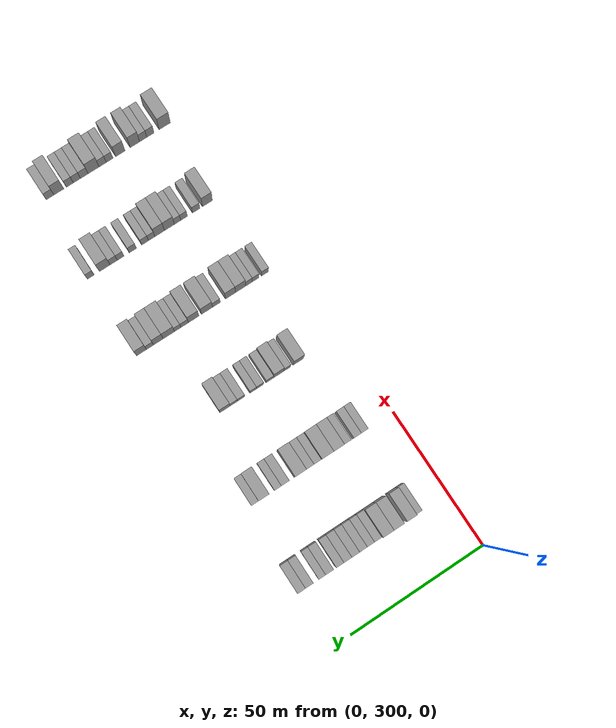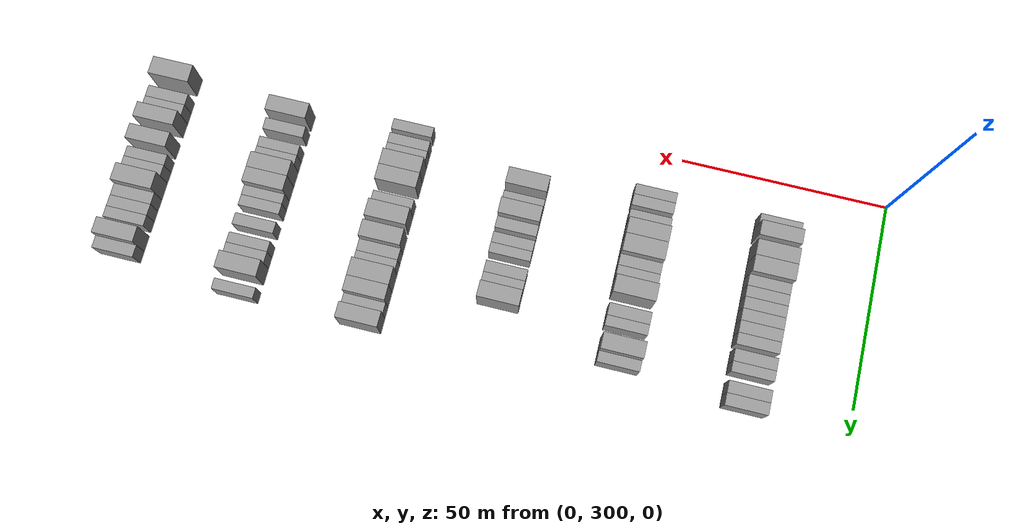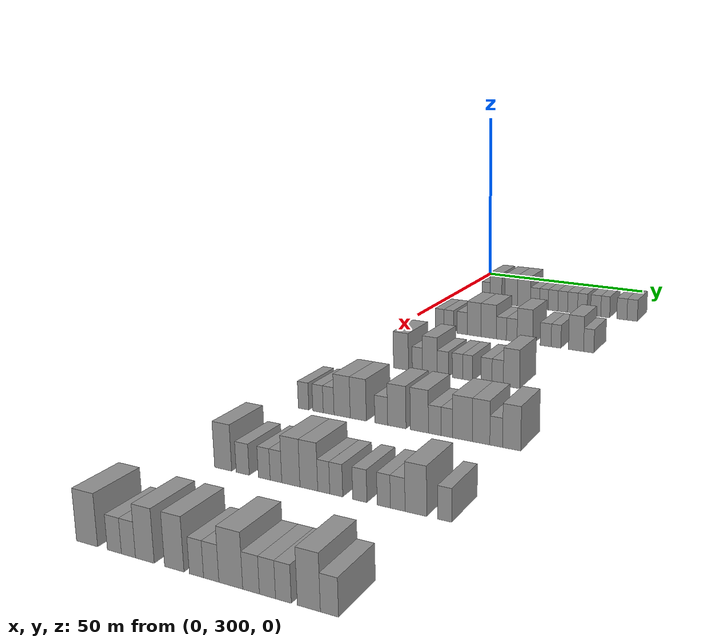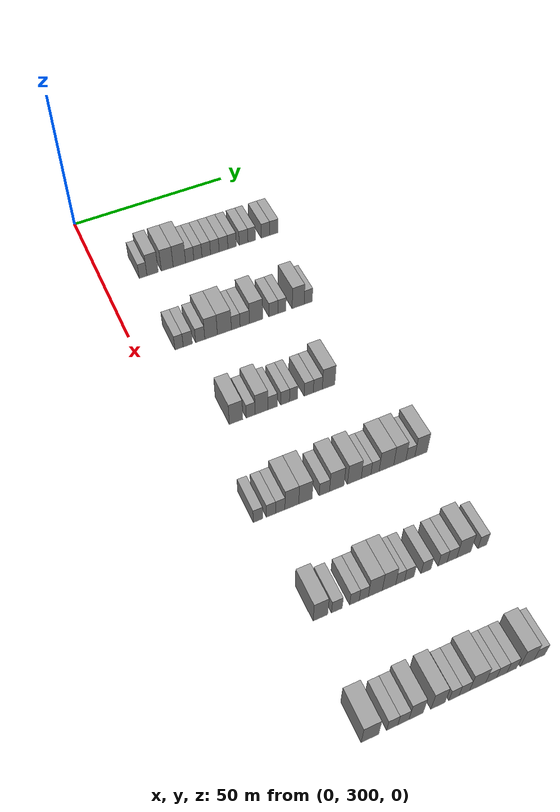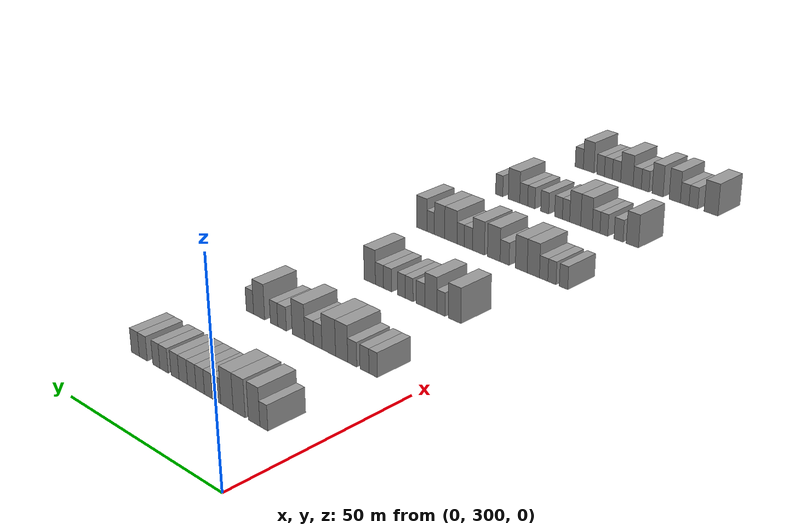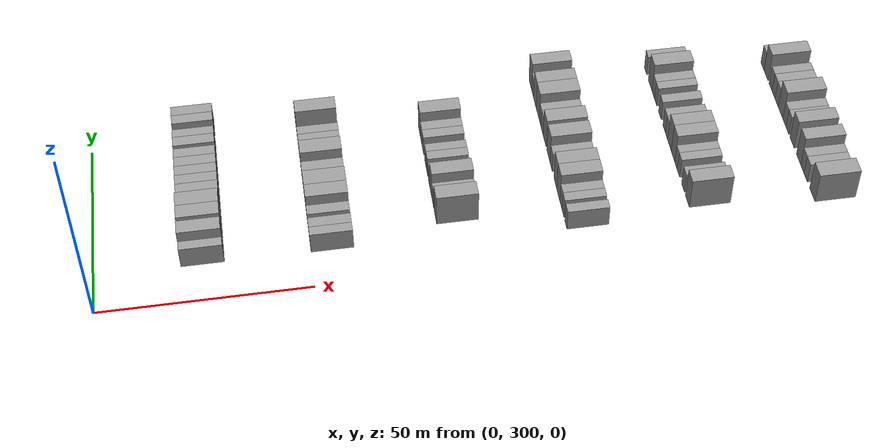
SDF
<sdf version="1.6">
 <world name="default">
  <model name="building_179">
   <static>1</static>
   <pose>25.0000 311.8172 0 0.000000 0.000000 0.000000</pose>
   <link name="link">
    <pose>0 0 3.00 0 0 0</pose>
    <collision name="collision"><geometry><box><size>10.0000 2.4800 6.0000</size></box></geometry></collision>
    <visual name="visual">
     <cast_shadows>0</cast_shadows>
     <geometry><box><size>10.0000 2.4800 6.0000</size></box></geometry>
     <material>
      <script>
       <uri>model://grey_wall/materials/scripts</uri>
       <uri>model://grey_wall/materials/textures</uri>
       <name>vrc/grey_wall</name>
      </script>
     </material>
    </visual>
   </link>
  </model>
  <model name="building_180">
   <static>1</static>
   <pose>25.0000 314.8804 0 0.000000 0.000000 0.000000</pose>
   <link name="link">
    <pose>0 0 4.50 0 0 0</pose>
    <collision name="collision"><geometry><box><size>10.0000 3.6463 9.0000</size></box></geometry></collision>
    <visual name="visual">
     <cast_shadows>0</cast_shadows>
     <geometry><box><size>10.0000 3.6463 9.0000</size></box></geometry>
     <material>
      <script>
       <uri>model://grey_wall/materials/scripts</uri>
       <uri>model://grey_wall/materials/textures</uri>
       <name>vrc/grey_wall</name>
      </script>
     </material>
    </visual>
   </link>
  </model>
  <model name="building_181">
   <static>1</static>
   <pose>25.0000 319.6234 0 0.000000 0.000000 0.000000</pose>
   <link name="link">
    <pose>0 0 4.50 0 0 0</pose>
    <collision name="collision"><geometry><box><size>10.0000 3.8399 9.0000</size></box></geometry></collision>
    <visual name="visual">
     <cast_shadows>0</cast_shadows>
     <geometry><box><size>10.0000 3.8399 9.0000</size></box></geometry>
     <material>
      <script>
       <uri>model://grey_wall/materials/scripts</uri>
       <uri>model://grey_wall/materials/textures</uri>
       <name>vrc/grey_wall</name>
      </script>
     </material>
    </visual>
   </link>
  </model>
  <model name="building_182">
   <static>1</static>
   <pose>25.0000 323.5668 0 0.000000 0.000000 0.000000</pose>
   <link name="link">
    <pose>0 0 4.50 0 0 0</pose>
    <collision name="collision"><geometry><box><size>10.0000 4.0468 9.0000</size></box></geometry></collision>
    <visual name="visual">
     <cast_shadows>0</cast_shadows>
     <geometry><box><size>10.0000 4.0468 9.0000</size></box></geometry>
     <material>
      <script>
       <uri>model://grey_wall/materials/scripts</uri>
       <uri>model://grey_wall/materials/textures</uri>
       <name>vrc/grey_wall</name>
      </script>
     </material>
    </visual>
   </link>
  </model>
  <model name="building_183">
   <static>1</static>
   <pose>25.0000 326.9520 0 0.000000 0.000000 0.000000</pose>
   <link name="link">
    <pose>0 0 3.00 0 0 0</pose>
    <collision name="collision"><geometry><box><size>10.0000 2.7236 6.0000</size></box></geometry></collision>
    <visual name="visual">
     <cast_shadows>0</cast_shadows>
     <geometry><box><size>10.0000 2.7236 6.0000</size></box></geometry>
     <material>
      <script>
       <uri>model://grey_wall/materials/scripts</uri>
       <uri>model://grey_wall/materials/textures</uri>
       <name>vrc/grey_wall</name>
      </script>
     </material>
    </visual>
   </link>
  </model>
  <model name="building_184">
   <static>1</static>
   <pose>25.0000 329.6594 0 0.000000 0.000000 0.000000</pose>
   <link name="link">
    <pose>0 0 3.00 0 0 0</pose>
    <collision name="collision"><geometry><box><size>10.0000 2.6913 6.0000</size></box></geometry></collision>
    <visual name="visual">
     <cast_shadows>0</cast_shadows>
     <geometry><box><size>10.0000 2.6913 6.0000</size></box></geometry>
     <material>
      <script>
       <uri>model://grey_wall/materials/scripts</uri>
       <uri>model://grey_wall/materials/textures</uri>
       <name>vrc/grey_wall</name>
      </script>
     </material>
    </visual>
   </link>
  </model>
  <model name="building_185">
   <static>1</static>
   <pose>25.0000 332.4242 0 0.000000 0.000000 0.000000</pose>
   <link name="link">
    <pose>0 0 3.00 0 0 0</pose>
    <collision name="collision"><geometry><box><size>10.0000 2.8381 6.0000</size></box></geometry></collision>
    <visual name="visual">
     <cast_shadows>0</cast_shadows>
     <geometry><box><size>10.0000 2.8381 6.0000</size></box></geometry>
     <material>
      <script>
       <uri>model://grey_wall/materials/scripts</uri>
       <uri>model://grey_wall/materials/textures</uri>
       <name>vrc/grey_wall</name>
      </script>
     </material>
    </visual>
   </link>
  </model>
  <model name="building_186">
   <static>1</static>
   <pose>25.0000 335.2775 0 0.000000 0.000000 0.000000</pose>
   <link name="link">
    <pose>0 0 3.00 0 0 0</pose>
    <collision name="collision"><geometry><box><size>10.0000 2.8686 6.0000</size></box></geometry></collision>
    <visual name="visual">
     <cast_shadows>0</cast_shadows>
     <geometry><box><size>10.0000 2.8686 6.0000</size></box></geometry>
     <material>
      <script>
       <uri>model://grey_wall/materials/scripts</uri>
       <uri>model://grey_wall/materials/textures</uri>
       <name>vrc/grey_wall</name>
      </script>
     </material>
    </visual>
   </link>
  </model>
  <model name="building_187">
   <static>1</static>
   <pose>25.0000 338.1814 0 0.000000 0.000000 0.000000</pose>
   <link name="link">
    <pose>0 0 3.00 0 0 0</pose>
    <collision name="collision"><geometry><box><size>10.0000 2.9391 6.0000</size></box></geometry></collision>
    <visual name="visual">
     <cast_shadows>0</cast_shadows>
     <geometry><box><size>10.0000 2.9391 6.0000</size></box></geometry>
     <material>
      <script>
       <uri>model://grey_wall/materials/scripts</uri>
       <uri>model://grey_wall/materials/textures</uri>
       <name>vrc/grey_wall</name>
      </script>
     </material>
    </visual>
   </link>
  </model>
  <model name="building_188">
   <static>1</static>
   <pose>25.0000 341.0525 0 0.000000 0.000000 0.000000</pose>
   <link name="link">
    <pose>0 0 3.00 0 0 0</pose>
    <collision name="collision"><geometry><box><size>10.0000 2.8032 6.0000</size></box></geometry></collision>
    <visual name="visual">
     <cast_shadows>0</cast_shadows>
     <geometry><box><size>10.0000 2.8032 6.0000</size></box></geometry>
     <material>
      <script>
       <uri>model://grey_wall/materials/scripts</uri>
       <uri>model://grey_wall/materials/textures</uri>
       <name>vrc/grey_wall</name>
      </script>
     </material>
    </visual>
   </link>
  </model>
  <model name="building_189">
   <static>1</static>
   <pose>25.0000 344.9253 0 0.000000 0.000000 0.000000</pose>
   <link name="link">
    <pose>0 0 3.00 0 0 0</pose>
    <collision name="collision"><geometry><box><size>10.0000 2.9423 6.0000</size></box></geometry></collision>
    <visual name="visual">
     <cast_shadows>0</cast_shadows>
     <geometry><box><size>10.0000 2.9423 6.0000</size></box></geometry>
     <material>
      <script>
       <uri>model://grey_wall/materials/scripts</uri>
       <uri>model://grey_wall/materials/textures</uri>
       <name>vrc/grey_wall</name>
      </script>
     </material>
    </visual>
   </link>
  </model>
  <model name="building_190">
   <static>1</static>
   <pose>25.0000 347.6630 0 0.000000 0.000000 0.000000</pose>
   <link name="link">
    <pose>0 0 3.00 0 0 0</pose>
    <collision name="collision"><geometry><box><size>10.0000 2.5331 6.0000</size></box></geometry></collision>
    <visual name="visual">
     <cast_shadows>0</cast_shadows>
     <geometry><box><size>10.0000 2.5331 6.0000</size></box></geometry>
     <material>
      <script>
       <uri>model://grey_wall/materials/scripts</uri>
       <uri>model://grey_wall/materials/textures</uri>
       <name>vrc/grey_wall</name>
      </script>
     </material>
    </visual>
   </link>
  </model>
  <model name="building_191">
   <static>1</static>
   <pose>25.0000 352.3711 0 0.000000 0.000000 0.000000</pose>
   <link name="link">
    <pose>0 0 3.00 0 0 0</pose>
    <collision name="collision"><geometry><box><size>10.0000 2.8832 6.0000</size></box></geometry></collision>
    <visual name="visual">
     <cast_shadows>0</cast_shadows>
     <geometry><box><size>10.0000 2.8832 6.0000</size></box></geometry>
     <material>
      <script>
       <uri>model://grey_wall/materials/scripts</uri>
       <uri>model://grey_wall/materials/textures</uri>
       <name>vrc/grey_wall</name>
      </script>
     </material>
    </visual>
   </link>
  </model>
  <model name="building_192">
   <static>1</static>
   <pose>25.0000 355.2673 0 0.000000 0.000000 0.000000</pose>
   <link name="link">
    <pose>0 0 3.00 0 0 0</pose>
    <collision name="collision"><geometry><box><size>10.0000 2.9092 6.0000</size></box></geometry></collision>
    <visual name="visual">
     <cast_shadows>0</cast_shadows>
     <geometry><box><size>10.0000 2.9092 6.0000</size></box></geometry>
     <material>
      <script>
       <uri>model://grey_wall/materials/scripts</uri>
       <uri>model://grey_wall/materials/textures</uri>
       <name>vrc/grey_wall</name>
      </script>
     </material>
    </visual>
   </link>
  </model>
  <model name="building_414">
   <static>1</static>
   <pose>55.0000 311.6885 0 0.000000 0.000000 0.000000</pose>
   <link name="link">
    <pose>0 0 3.00 0 0 0</pose>
    <collision name="collision"><geometry><box><size>10.0000 2.5532 6.0000</size></box></geometry></collision>
    <visual name="visual">
     <cast_shadows>0</cast_shadows>
     <geometry><box><size>10.0000 2.5532 6.0000</size></box></geometry>
     <material>
      <script>
       <uri>model://grey_wall/materials/scripts</uri>
       <uri>model://grey_wall/materials/textures</uri>
       <name>vrc/grey_wall</name>
      </script>
     </material>
    </visual>
   </link>
  </model>
  <model name="building_415">
   <static>1</static>
   <pose>55.0000 314.3787 0 0.000000 0.000000 0.000000</pose>
   <link name="link">
    <pose>0 0 3.00 0 0 0</pose>
    <collision name="collision"><geometry><box><size>10.0000 2.8274 6.0000</size></box></geometry></collision>
    <visual name="visual">
     <cast_shadows>0</cast_shadows>
     <geometry><box><size>10.0000 2.8274 6.0000</size></box></geometry>
     <material>
      <script>
       <uri>model://grey_wall/materials/scripts</uri>
       <uri>model://grey_wall/materials/textures</uri>
       <name>vrc/grey_wall</name>
      </script>
     </material>
    </visual>
   </link>
  </model>
  <model name="building_416">
   <static>1</static>
   <pose>55.0000 318.2169 0 0.000000 0.000000 0.000000</pose>
   <link name="link">
    <pose>0 0 3.00 0 0 0</pose>
    <collision name="collision"><geometry><box><size>10.0000 2.8488 6.0000</size></box></geometry></collision>
    <visual name="visual">
     <cast_shadows>0</cast_shadows>
     <geometry><box><size>10.0000 2.8488 6.0000</size></box></geometry>
     <material>
      <script>
       <uri>model://grey_wall/materials/scripts</uri>
       <uri>model://grey_wall/materials/textures</uri>
       <name>vrc/grey_wall</name>
      </script>
     </material>
    </visual>
   </link>
  </model>
  <model name="building_417">
   <static>1</static>
   <pose>55.0000 321.5966 0 0.000000 0.000000 0.000000</pose>
   <link name="link">
    <pose>0 0 4.50 0 0 0</pose>
    <collision name="collision"><geometry><box><size>10.0000 3.9107 9.0000</size></box></geometry></collision>
    <visual name="visual">
     <cast_shadows>0</cast_shadows>
     <geometry><box><size>10.0000 3.9107 9.0000</size></box></geometry>
     <material>
      <script>
       <uri>model://grey_wall/materials/scripts</uri>
       <uri>model://grey_wall/materials/textures</uri>
       <name>vrc/grey_wall</name>
      </script>
     </material>
    </visual>
   </link>
  </model>
  <model name="building_418">
   <static>1</static>
   <pose>55.0000 325.7583 0 0.000000 0.000000 0.000000</pose>
   <link name="link">
    <pose>0 0 4.50 0 0 0</pose>
    <collision name="collision"><geometry><box><size>10.0000 4.4127 9.0000</size></box></geometry></collision>
    <visual name="visual">
     <cast_shadows>0</cast_shadows>
     <geometry><box><size>10.0000 4.4127 9.0000</size></box></geometry>
     <material>
      <script>
       <uri>model://grey_wall/materials/scripts</uri>
       <uri>model://grey_wall/materials/textures</uri>
       <name>vrc/grey_wall</name>
      </script>
     </material>
    </visual>
   </link>
  </model>
  <model name="building_419">
   <static>1</static>
   <pose>55.0000 329.3405 0 0.000000 0.000000 0.000000</pose>
   <link name="link">
    <pose>0 0 3.00 0 0 0</pose>
    <collision name="collision"><geometry><box><size>10.0000 2.7517 6.0000</size></box></geometry></collision>
    <visual name="visual">
     <cast_shadows>0</cast_shadows>
     <geometry><box><size>10.0000 2.7517 6.0000</size></box></geometry>
     <material>
      <script>
       <uri>model://grey_wall/materials/scripts</uri>
       <uri>model://grey_wall/materials/textures</uri>
       <name>vrc/grey_wall</name>
      </script>
     </material>
    </visual>
   </link>
  </model>
  <model name="building_420">
   <static>1</static>
   <pose>55.0000 332.1954 0 0.000000 0.000000 0.000000</pose>
   <link name="link">
    <pose>0 0 3.00 0 0 0</pose>
    <collision name="collision"><geometry><box><size>10.0000 2.9580 6.0000</size></box></geometry></collision>
    <visual name="visual">
     <cast_shadows>0</cast_shadows>
     <geometry><box><size>10.0000 2.9580 6.0000</size></box></geometry>
     <material>
      <script>
       <uri>model://grey_wall/materials/scripts</uri>
       <uri>model://grey_wall/materials/textures</uri>
       <name>vrc/grey_wall</name>
      </script>
     </material>
    </visual>
   </link>
  </model>
  <model name="building_421">
   <static>1</static>
   <pose>55.0000 335.7936 0 0.000000 0.000000 0.000000</pose>
   <link name="link">
    <pose>0 0 4.50 0 0 0</pose>
    <collision name="collision"><geometry><box><size>10.0000 4.2384 9.0000</size></box></geometry></collision>
    <visual name="visual">
     <cast_shadows>0</cast_shadows>
     <geometry><box><size>10.0000 4.2384 9.0000</size></box></geometry>
     <material>
      <script>
       <uri>model://grey_wall/materials/scripts</uri>
       <uri>model://grey_wall/materials/textures</uri>
       <name>vrc/grey_wall</name>
      </script>
     </material>
    </visual>
   </link>
  </model>
  <model name="building_422">
   <static>1</static>
   <pose>55.0000 341.3906 0 0.000000 0.000000 0.000000</pose>
   <link name="link">
    <pose>0 0 3.00 0 0 0</pose>
    <collision name="collision"><geometry><box><size>10.0000 2.9558 6.0000</size></box></geometry></collision>
    <visual name="visual">
     <cast_shadows>0</cast_shadows>
     <geometry><box><size>10.0000 2.9558 6.0000</size></box></geometry>
     <material>
      <script>
       <uri>model://grey_wall/materials/scripts</uri>
       <uri>model://grey_wall/materials/textures</uri>
       <name>vrc/grey_wall</name>
      </script>
     </material>
    </visual>
   </link>
  </model>
  <model name="building_423">
   <static>1</static>
   <pose>55.0000 344.1561 0 0.000000 0.000000 0.000000</pose>
   <link name="link">
    <pose>0 0 3.00 0 0 0</pose>
    <collision name="collision"><geometry><box><size>10.0000 2.5752 6.0000</size></box></geometry></collision>
    <visual name="visual">
     <cast_shadows>0</cast_shadows>
     <geometry><box><size>10.0000 2.5752 6.0000</size></box></geometry>
     <material>
      <script>
       <uri>model://grey_wall/materials/scripts</uri>
       <uri>model://grey_wall/materials/textures</uri>
       <name>vrc/grey_wall</name>
      </script>
     </material>
    </visual>
   </link>
  </model>
  <model name="building_424">
   <static>1</static>
   <pose>55.0000 349.4092 0 0.000000 0.000000 0.000000</pose>
   <link name="link">
    <pose>0 0 4.50 0 0 0</pose>
    <collision name="collision"><geometry><box><size>10.0000 3.9309 9.0000</size></box></geometry></collision>
    <visual name="visual">
     <cast_shadows>0</cast_shadows>
     <geometry><box><size>10.0000 3.9309 9.0000</size></box></geometry>
     <material>
      <script>
       <uri>model://grey_wall/materials/scripts</uri>
       <uri>model://grey_wall/materials/textures</uri>
       <name>vrc/grey_wall</name>
      </script>
     </material>
    </visual>
   </link>
  </model>
  <model name="building_425">
   <static>1</static>
   <pose>55.0000 352.6966 0 0.000000 0.000000 0.000000</pose>
   <link name="link">
    <pose>0 0 3.00 0 0 0</pose>
    <collision name="collision"><geometry><box><size>10.0000 2.6440 6.0000</size></box></geometry></collision>
    <visual name="visual">
     <cast_shadows>0</cast_shadows>
     <geometry><box><size>10.0000 2.6440 6.0000</size></box></geometry>
     <material>
      <script>
       <uri>model://grey_wall/materials/scripts</uri>
       <uri>model://grey_wall/materials/textures</uri>
       <name>vrc/grey_wall</name>
      </script>
     </material>
    </visual>
   </link>
  </model>
  <model name="building_637">
   <static>1</static>
   <pose>85.0000 316.4988 0 0.000000 0.000000 0.000000</pose>
   <link name="link">
    <pose>0 0 4.50 0 0 0</pose>
    <collision name="collision"><geometry><box><size>10.0000 3.9902 9.0000</size></box></geometry></collision>
    <visual name="visual">
     <cast_shadows>0</cast_shadows>
     <geometry><box><size>10.0000 3.9902 9.0000</size></box></geometry>
     <material>
      <script>
       <uri>model://grey_wall/materials/scripts</uri>
       <uri>model://grey_wall/materials/textures</uri>
       <name>vrc/grey_wall</name>
      </script>
     </material>
    </visual>
   </link>
  </model>
  <model name="building_638">
   <static>1</static>
   <pose>85.0000 320.8134 0 0.000000 0.000000 0.000000</pose>
   <link name="link">
    <pose>0 0 3.00 0 0 0</pose>
    <collision name="collision"><geometry><box><size>10.0000 2.6389 6.0000</size></box></geometry></collision>
    <visual name="visual">
     <cast_shadows>0</cast_shadows>
     <geometry><box><size>10.0000 2.6389 6.0000</size></box></geometry>
     <material>
      <script>
       <uri>model://grey_wall/materials/scripts</uri>
       <uri>model://grey_wall/materials/textures</uri>
       <name>vrc/grey_wall</name>
      </script>
     </material>
    </visual>
   </link>
  </model>
  <model name="building_639">
   <static>1</static>
   <pose>85.0000 324.0642 0 0.000000 0.000000 0.000000</pose>
   <link name="link">
    <pose>0 0 4.50 0 0 0</pose>
    <collision name="collision"><geometry><box><size>10.0000 3.8629 9.0000</size></box></geometry></collision>
    <visual name="visual">
     <cast_shadows>0</cast_shadows>
     <geometry><box><size>10.0000 3.8629 9.0000</size></box></geometry>
     <material>
      <script>
       <uri>model://grey_wall/materials/scripts</uri>
       <uri>model://grey_wall/materials/textures</uri>
       <name>vrc/grey_wall</name>
      </script>
     </material>
    </visual>
   </link>
  </model>
  <model name="building_640">
   <static>1</static>
   <pose>85.0000 327.4183 0 0.000000 0.000000 0.000000</pose>
   <link name="link">
    <pose>0 0 3.00 0 0 0</pose>
    <collision name="collision"><geometry><box><size>10.0000 2.8453 6.0000</size></box></geometry></collision>
    <visual name="visual">
     <cast_shadows>0</cast_shadows>
     <geometry><box><size>10.0000 2.8453 6.0000</size></box></geometry>
     <material>
      <script>
       <uri>model://grey_wall/materials/scripts</uri>
       <uri>model://grey_wall/materials/textures</uri>
       <name>vrc/grey_wall</name>
      </script>
     </material>
    </visual>
   </link>
  </model>
  <model name="building_641">
   <static>1</static>
   <pose>85.0000 331.1667 0 0.000000 0.000000 0.000000</pose>
   <link name="link">
    <pose>0 0 3.00 0 0 0</pose>
    <collision name="collision"><geometry><box><size>10.0000 2.6513 6.0000</size></box></geometry></collision>
    <visual name="visual">
     <cast_shadows>0</cast_shadows>
     <geometry><box><size>10.0000 2.6513 6.0000</size></box></geometry>
     <material>
      <script>
       <uri>model://grey_wall/materials/scripts</uri>
       <uri>model://grey_wall/materials/textures</uri>
       <name>vrc/grey_wall</name>
      </script>
     </material>
    </visual>
   </link>
  </model>
  <model name="building_642">
   <static>1</static>
   <pose>85.0000 333.7397 0 0.000000 0.000000 0.000000</pose>
   <link name="link">
    <pose>0 0 3.00 0 0 0</pose>
    <collision name="collision"><geometry><box><size>10.0000 2.4948 6.0000</size></box></geometry></collision>
    <visual name="visual">
     <cast_shadows>0</cast_shadows>
     <geometry><box><size>10.0000 2.4948 6.0000</size></box></geometry>
     <material>
      <script>
       <uri>model://grey_wall/materials/scripts</uri>
       <uri>model://grey_wall/materials/textures</uri>
       <name>vrc/grey_wall</name>
      </script>
     </material>
    </visual>
   </link>
  </model>
  <model name="building_643">
   <static>1</static>
   <pose>85.0000 338.3796 0 0.000000 0.000000 0.000000</pose>
   <link name="link">
    <pose>0 0 3.00 0 0 0</pose>
    <collision name="collision"><geometry><box><size>10.0000 2.7849 6.0000</size></box></geometry></collision>
    <visual name="visual">
     <cast_shadows>0</cast_shadows>
     <geometry><box><size>10.0000 2.7849 6.0000</size></box></geometry>
     <material>
      <script>
       <uri>model://grey_wall/materials/scripts</uri>
       <uri>model://grey_wall/materials/textures</uri>
       <name>vrc/grey_wall</name>
      </script>
     </material>
    </visual>
   </link>
  </model>
  <model name="building_644">
   <static>1</static>
   <pose>85.0000 341.1564 0 0.000000 0.000000 0.000000</pose>
   <link name="link">
    <pose>0 0 3.00 0 0 0</pose>
    <collision name="collision"><geometry><box><size>10.0000 2.7686 6.0000</size></box></geometry></collision>
    <visual name="visual">
     <cast_shadows>0</cast_shadows>
     <geometry><box><size>10.0000 2.7686 6.0000</size></box></geometry>
     <material>
      <script>
       <uri>model://grey_wall/materials/scripts</uri>
       <uri>model://grey_wall/materials/textures</uri>
       <name>vrc/grey_wall</name>
      </script>
     </material>
    </visual>
   </link>
  </model>
  <model name="building_645">
   <static>1</static>
   <pose>85.0000 344.4911 0 0.000000 0.000000 0.000000</pose>
   <link name="link">
    <pose>0 0 4.50 0 0 0</pose>
    <collision name="collision"><geometry><box><size>10.0000 3.9009 9.0000</size></box></geometry></collision>
    <visual name="visual">
     <cast_shadows>0</cast_shadows>
     <geometry><box><size>10.0000 3.9009 9.0000</size></box></geometry>
     <material>
      <script>
       <uri>model://grey_wall/materials/scripts</uri>
       <uri>model://grey_wall/materials/textures</uri>
       <name>vrc/grey_wall</name>
      </script>
     </material>
    </visual>
   </link>
  </model>
  <model name="building_857">
   <static>1</static>
   <pose>115.0000 309.6032 0 0.000000 0.000000 0.000000</pose>
   <link name="link">
    <pose>0 0 3.00 0 0 0</pose>
    <collision name="collision"><geometry><box><size>10.0000 2.6256 6.0000</size></box></geometry></collision>
    <visual name="visual">
     <cast_shadows>0</cast_shadows>
     <geometry><box><size>10.0000 2.6256 6.0000</size></box></geometry>
     <material>
      <script>
       <uri>model://grey_wall/materials/scripts</uri>
       <uri>model://grey_wall/materials/textures</uri>
       <name>vrc/grey_wall</name>
      </script>
     </material>
    </visual>
   </link>
  </model>
  <model name="building_858">
   <static>1</static>
   <pose>115.0000 313.2054 0 0.000000 0.000000 0.000000</pose>
   <link name="link">
    <pose>0 0 3.00 0 0 0</pose>
    <collision name="collision"><geometry><box><size>10.0000 2.5788 6.0000</size></box></geometry></collision>
    <visual name="visual">
     <cast_shadows>0</cast_shadows>
     <geometry><box><size>10.0000 2.5788 6.0000</size></box></geometry>
     <material>
      <script>
       <uri>model://grey_wall/materials/scripts</uri>
       <uri>model://grey_wall/materials/textures</uri>
       <name>vrc/grey_wall</name>
      </script>
     </material>
    </visual>
   </link>
  </model>
  <model name="building_859">
   <static>1</static>
   <pose>115.0000 315.8160 0 0.000000 0.000000 0.000000</pose>
   <link name="link">
    <pose>0 0 3.00 0 0 0</pose>
    <collision name="collision"><geometry><box><size>10.0000 2.6425 6.0000</size></box></geometry></collision>
    <visual name="visual">
     <cast_shadows>0</cast_shadows>
     <geometry><box><size>10.0000 2.6425 6.0000</size></box></geometry>
     <material>
      <script>
       <uri>model://grey_wall/materials/scripts</uri>
       <uri>model://grey_wall/materials/textures</uri>
       <name>vrc/grey_wall</name>
      </script>
     </material>
    </visual>
   </link>
  </model>
  <model name="building_860">
   <static>1</static>
   <pose>115.0000 319.0951 0 0.000000 0.000000 0.000000</pose>
   <link name="link">
    <pose>0 0 4.50 0 0 0</pose>
    <collision name="collision"><geometry><box><size>10.0000 3.9156 9.0000</size></box></geometry></collision>
    <visual name="visual">
     <cast_shadows>0</cast_shadows>
     <geometry><box><size>10.0000 3.9156 9.0000</size></box></geometry>
     <material>
      <script>
       <uri>model://grey_wall/materials/scripts</uri>
       <uri>model://grey_wall/materials/textures</uri>
       <name>vrc/grey_wall</name>
      </script>
     </material>
    </visual>
   </link>
  </model>
  <model name="building_861">
   <static>1</static>
   <pose>115.0000 322.9667 0 0.000000 0.000000 0.000000</pose>
   <link name="link">
    <pose>0 0 4.50 0 0 0</pose>
    <collision name="collision"><geometry><box><size>10.0000 3.8276 9.0000</size></box></geometry></collision>
    <visual name="visual">
     <cast_shadows>0</cast_shadows>
     <geometry><box><size>10.0000 3.8276 9.0000</size></box></geometry>
     <material>
      <script>
       <uri>model://grey_wall/materials/scripts</uri>
       <uri>model://grey_wall/materials/textures</uri>
       <name>vrc/grey_wall</name>
      </script>
     </material>
    </visual>
   </link>
  </model>
  <model name="building_862">
   <static>1</static>
   <pose>115.0000 328.3688 0 0.000000 0.000000 0.000000</pose>
   <link name="link">
    <pose>0 0 3.00 0 0 0</pose>
    <collision name="collision"><geometry><box><size>10.0000 2.9766 6.0000</size></box></geometry></collision>
    <visual name="visual">
     <cast_shadows>0</cast_shadows>
     <geometry><box><size>10.0000 2.9766 6.0000</size></box></geometry>
     <material>
      <script>
       <uri>model://grey_wall/materials/scripts</uri>
       <uri>model://grey_wall/materials/textures</uri>
       <name>vrc/grey_wall</name>
      </script>
     </material>
    </visual>
   </link>
  </model>
  <model name="building_863">
   <static>1</static>
   <pose>115.0000 331.9577 0 0.000000 0.000000 0.000000</pose>
   <link name="link">
    <pose>0 0 4.50 0 0 0</pose>
    <collision name="collision"><geometry><box><size>10.0000 4.2013 9.0000</size></box></geometry></collision>
    <visual name="visual">
     <cast_shadows>0</cast_shadows>
     <geometry><box><size>10.0000 4.2013 9.0000</size></box></geometry>
     <material>
      <script>
       <uri>model://grey_wall/materials/scripts</uri>
       <uri>model://grey_wall/materials/textures</uri>
       <name>vrc/grey_wall</name>
      </script>
     </material>
    </visual>
   </link>
  </model>
  <model name="building_864">
   <static>1</static>
   <pose>115.0000 337.0785 0 0.000000 0.000000 0.000000</pose>
   <link name="link">
    <pose>0 0 4.50 0 0 0</pose>
    <collision name="collision"><geometry><box><size>10.0000 4.0403 9.0000</size></box></geometry></collision>
    <visual name="visual">
     <cast_shadows>0</cast_shadows>
     <geometry><box><size>10.0000 4.0403 9.0000</size></box></geometry>
     <material>
      <script>
       <uri>model://grey_wall/materials/scripts</uri>
       <uri>model://grey_wall/materials/textures</uri>
       <name>vrc/grey_wall</name>
      </script>
     </material>
    </visual>
   </link>
  </model>
  <model name="building_865">
   <static>1</static>
   <pose>115.0000 340.5196 0 0.000000 0.000000 0.000000</pose>
   <link name="link">
    <pose>0 0 3.00 0 0 0</pose>
    <collision name="collision"><geometry><box><size>10.0000 2.8419 6.0000</size></box></geometry></collision>
    <visual name="visual">
     <cast_shadows>0</cast_shadows>
     <geometry><box><size>10.0000 2.8419 6.0000</size></box></geometry>
     <material>
      <script>
       <uri>model://grey_wall/materials/scripts</uri>
       <uri>model://grey_wall/materials/textures</uri>
       <name>vrc/grey_wall</name>
      </script>
     </material>
    </visual>
   </link>
  </model>
  <model name="building_866">
   <static>1</static>
   <pose>115.0000 343.1594 0 0.000000 0.000000 0.000000</pose>
   <link name="link">
    <pose>0 0 3.00 0 0 0</pose>
    <collision name="collision"><geometry><box><size>10.0000 2.4377 6.0000</size></box></geometry></collision>
    <visual name="visual">
     <cast_shadows>0</cast_shadows>
     <geometry><box><size>10.0000 2.4377 6.0000</size></box></geometry>
     <material>
      <script>
       <uri>model://grey_wall/materials/scripts</uri>
       <uri>model://grey_wall/materials/textures</uri>
       <name>vrc/grey_wall</name>
      </script>
     </material>
    </visual>
   </link>
  </model>
  <model name="building_867">
   <static>1</static>
   <pose>115.0000 346.5483 0 0.000000 0.000000 0.000000</pose>
   <link name="link">
    <pose>0 0 4.50 0 0 0</pose>
    <collision name="collision"><geometry><box><size>10.0000 4.3402 9.0000</size></box></geometry></collision>
    <visual name="visual">
     <cast_shadows>0</cast_shadows>
     <geometry><box><size>10.0000 4.3402 9.0000</size></box></geometry>
     <material>
      <script>
       <uri>model://grey_wall/materials/scripts</uri>
       <uri>model://grey_wall/materials/textures</uri>
       <name>vrc/grey_wall</name>
      </script>
     </material>
    </visual>
   </link>
  </model>
  <model name="building_868">
   <static>1</static>
   <pose>115.0000 350.5420 0 0.000000 0.000000 0.000000</pose>
   <link name="link">
    <pose>0 0 4.50 0 0 0</pose>
    <collision name="collision"><geometry><box><size>10.0000 3.6472 9.0000</size></box></geometry></collision>
    <visual name="visual">
     <cast_shadows>0</cast_shadows>
     <geometry><box><size>10.0000 3.6472 9.0000</size></box></geometry>
     <material>
      <script>
       <uri>model://grey_wall/materials/scripts</uri>
       <uri>model://grey_wall/materials/textures</uri>
       <name>vrc/grey_wall</name>
      </script>
     </material>
    </visual>
   </link>
  </model>
  <model name="building_869">
   <static>1</static>
   <pose>115.0000 353.7113 0 0.000000 0.000000 0.000000</pose>
   <link name="link">
    <pose>0 0 3.00 0 0 0</pose>
    <collision name="collision"><geometry><box><size>10.0000 2.6912 6.0000</size></box></geometry></collision>
    <visual name="visual">
     <cast_shadows>0</cast_shadows>
     <geometry><box><size>10.0000 2.6912 6.0000</size></box></geometry>
     <material>
      <script>
       <uri>model://grey_wall/materials/scripts</uri>
       <uri>model://grey_wall/materials/textures</uri>
       <name>vrc/grey_wall</name>
      </script>
     </material>
    </visual>
   </link>
  </model>
  <model name="building_870">
   <static>1</static>
   <pose>115.0000 356.9278 0 0.000000 0.000000 0.000000</pose>
   <link name="link">
    <pose>0 0 4.50 0 0 0</pose>
    <collision name="collision"><geometry><box><size>10.0000 3.7419 9.0000</size></box></geometry></collision>
    <visual name="visual">
     <cast_shadows>0</cast_shadows>
     <geometry><box><size>10.0000 3.7419 9.0000</size></box></geometry>
     <material>
      <script>
       <uri>model://grey_wall/materials/scripts</uri>
       <uri>model://grey_wall/materials/textures</uri>
       <name>vrc/grey_wall</name>
      </script>
     </material>
    </visual>
   </link>
  </model>
  <model name="building_1083">
   <static>1</static>
   <pose>145.0000 312.5004 0 0.000000 0.000000 0.000000</pose>
   <link name="link">
    <pose>0 0 4.50 0 0 0</pose>
    <collision name="collision"><geometry><box><size>10.0000 3.8634 9.0000</size></box></geometry></collision>
    <visual name="visual">
     <cast_shadows>0</cast_shadows>
     <geometry><box><size>10.0000 3.8634 9.0000</size></box></geometry>
     <material>
      <script>
       <uri>model://grey_wall/materials/scripts</uri>
       <uri>model://grey_wall/materials/textures</uri>
       <name>vrc/grey_wall</name>
      </script>
     </material>
    </visual>
   </link>
  </model>
  <model name="building_1084">
   <static>1</static>
   <pose>145.0000 316.8757 0 0.000000 0.000000 0.000000</pose>
   <link name="link">
    <pose>0 0 3.00 0 0 0</pose>
    <collision name="collision"><geometry><box><size>10.0000 2.8873 6.0000</size></box></geometry></collision>
    <visual name="visual">
     <cast_shadows>0</cast_shadows>
     <geometry><box><size>10.0000 2.8873 6.0000</size></box></geometry>
     <material>
      <script>
       <uri>model://grey_wall/materials/scripts</uri>
       <uri>model://grey_wall/materials/textures</uri>
       <name>vrc/grey_wall</name>
      </script>
     </material>
    </visual>
   </link>
  </model>
  <model name="building_1085">
   <static>1</static>
   <pose>145.0000 321.6036 0 0.000000 0.000000 0.000000</pose>
   <link name="link">
    <pose>0 0 3.00 0 0 0</pose>
    <collision name="collision"><geometry><box><size>10.0000 2.5685 6.0000</size></box></geometry></collision>
    <visual name="visual">
     <cast_shadows>0</cast_shadows>
     <geometry><box><size>10.0000 2.5685 6.0000</size></box></geometry>
     <material>
      <script>
       <uri>model://grey_wall/materials/scripts</uri>
       <uri>model://grey_wall/materials/textures</uri>
       <name>vrc/grey_wall</name>
      </script>
     </material>
    </visual>
   </link>
  </model>
  <model name="building_1086">
   <static>1</static>
   <pose>145.0000 324.1308 0 0.000000 0.000000 0.000000</pose>
   <link name="link">
    <pose>0 0 3.00 0 0 0</pose>
    <collision name="collision"><geometry><box><size>10.0000 2.4858 6.0000</size></box></geometry></collision>
    <visual name="visual">
     <cast_shadows>0</cast_shadows>
     <geometry><box><size>10.0000 2.4858 6.0000</size></box></geometry>
     <material>
      <script>
       <uri>model://grey_wall/materials/scripts</uri>
       <uri>model://grey_wall/materials/textures</uri>
       <name>vrc/grey_wall</name>
      </script>
     </material>
    </visual>
   </link>
  </model>
  <model name="building_1087">
   <static>1</static>
   <pose>145.0000 327.2934 0 0.000000 0.000000 0.000000</pose>
   <link name="link">
    <pose>0 0 4.50 0 0 0</pose>
    <collision name="collision"><geometry><box><size>10.0000 3.8396 9.0000</size></box></geometry></collision>
    <visual name="visual">
     <cast_shadows>0</cast_shadows>
     <geometry><box><size>10.0000 3.8396 9.0000</size></box></geometry>
     <material>
      <script>
       <uri>model://grey_wall/materials/scripts</uri>
       <uri>model://grey_wall/materials/textures</uri>
       <name>vrc/grey_wall</name>
      </script>
     </material>
    </visual>
   </link>
  </model>
  <model name="building_1088">
   <static>1</static>
   <pose>145.0000 331.0576 0 0.000000 0.000000 0.000000</pose>
   <link name="link">
    <pose>0 0 4.50 0 0 0</pose>
    <collision name="collision"><geometry><box><size>10.0000 3.6888 9.0000</size></box></geometry></collision>
    <visual name="visual">
     <cast_shadows>0</cast_shadows>
     <geometry><box><size>10.0000 3.6888 9.0000</size></box></geometry>
     <material>
      <script>
       <uri>model://grey_wall/materials/scripts</uri>
       <uri>model://grey_wall/materials/textures</uri>
       <name>vrc/grey_wall</name>
      </script>
     </material>
    </visual>
   </link>
  </model>
  <model name="building_1089">
   <static>1</static>
   <pose>145.0000 334.1280 0 0.000000 0.000000 0.000000</pose>
   <link name="link">
    <pose>0 0 3.00 0 0 0</pose>
    <collision name="collision"><geometry><box><size>10.0000 2.4520 6.0000</size></box></geometry></collision>
    <visual name="visual">
     <cast_shadows>0</cast_shadows>
     <geometry><box><size>10.0000 2.4520 6.0000</size></box></geometry>
     <material>
      <script>
       <uri>model://grey_wall/materials/scripts</uri>
       <uri>model://grey_wall/materials/textures</uri>
       <name>vrc/grey_wall</name>
      </script>
     </material>
    </visual>
   </link>
  </model>
  <model name="building_1090">
   <static>1</static>
   <pose>145.0000 336.6666 0 0.000000 0.000000 0.000000</pose>
   <link name="link">
    <pose>0 0 3.00 0 0 0</pose>
    <collision name="collision"><geometry><box><size>10.0000 2.6251 6.0000</size></box></geometry></collision>
    <visual name="visual">
     <cast_shadows>0</cast_shadows>
     <geometry><box><size>10.0000 2.6251 6.0000</size></box></geometry>
     <material>
      <script>
       <uri>model://grey_wall/materials/scripts</uri>
       <uri>model://grey_wall/materials/textures</uri>
       <name>vrc/grey_wall</name>
      </script>
     </material>
    </visual>
   </link>
  </model>
  <model name="building_1091">
   <static>1</static>
   <pose>145.0000 341.3764 0 0.000000 0.000000 0.000000</pose>
   <link name="link">
    <pose>0 0 3.00 0 0 0</pose>
    <collision name="collision"><geometry><box><size>10.0000 2.7947 6.0000</size></box></geometry></collision>
    <visual name="visual">
     <cast_shadows>0</cast_shadows>
     <geometry><box><size>10.0000 2.7947 6.0000</size></box></geometry>
     <material>
      <script>
       <uri>model://grey_wall/materials/scripts</uri>
       <uri>model://grey_wall/materials/textures</uri>
       <name>vrc/grey_wall</name>
      </script>
     </material>
    </visual>
   </link>
  </model>
  <model name="building_1092">
   <static>1</static>
   <pose>145.0000 346.0486 0 0.000000 0.000000 0.000000</pose>
   <link name="link">
    <pose>0 0 3.00 0 0 0</pose>
    <collision name="collision"><geometry><box><size>10.0000 2.5498 6.0000</size></box></geometry></collision>
    <visual name="visual">
     <cast_shadows>0</cast_shadows>
     <geometry><box><size>10.0000 2.5498 6.0000</size></box></geometry>
     <material>
      <script>
       <uri>model://grey_wall/materials/scripts</uri>
       <uri>model://grey_wall/materials/textures</uri>
       <name>vrc/grey_wall</name>
      </script>
     </material>
    </visual>
   </link>
  </model>
  <model name="building_1093">
   <static>1</static>
   <pose>145.0000 348.7180 0 0.000000 0.000000 0.000000</pose>
   <link name="link">
    <pose>0 0 3.00 0 0 0</pose>
    <collision name="collision"><geometry><box><size>10.0000 2.7890 6.0000</size></box></geometry></collision>
    <visual name="visual">
     <cast_shadows>0</cast_shadows>
     <geometry><box><size>10.0000 2.7890 6.0000</size></box></geometry>
     <material>
      <script>
       <uri>model://grey_wall/materials/scripts</uri>
       <uri>model://grey_wall/materials/textures</uri>
       <name>vrc/grey_wall</name>
      </script>
     </material>
    </visual>
   </link>
  </model>
  <model name="building_1094">
   <static>1</static>
   <pose>145.0000 352.1489 0 0.000000 0.000000 0.000000</pose>
   <link name="link">
    <pose>0 0 4.50 0 0 0</pose>
    <collision name="collision"><geometry><box><size>10.0000 4.0727 9.0000</size></box></geometry></collision>
    <visual name="visual">
     <cast_shadows>0</cast_shadows>
     <geometry><box><size>10.0000 4.0727 9.0000</size></box></geometry>
     <material>
      <script>
       <uri>model://grey_wall/materials/scripts</uri>
       <uri>model://grey_wall/materials/textures</uri>
       <name>vrc/grey_wall</name>
      </script>
     </material>
    </visual>
   </link>
  </model>
  <model name="building_1095">
   <static>1</static>
   <pose>145.0000 357.4786 0 0.000000 0.000000 0.000000</pose>
   <link name="link">
    <pose>0 0 3.00 0 0 0</pose>
    <collision name="collision"><geometry><box><size>10.0000 2.5867 6.0000</size></box></geometry></collision>
    <visual name="visual">
     <cast_shadows>0</cast_shadows>
     <geometry><box><size>10.0000 2.5867 6.0000</size></box></geometry>
     <material>
      <script>
       <uri>model://grey_wall/materials/scripts</uri>
       <uri>model://grey_wall/materials/textures</uri>
       <name>vrc/grey_wall</name>
      </script>
     </material>
    </visual>
   </link>
  </model>
  <model name="building_1305">
   <static>1</static>
   <pose>175.0000 310.0148 0 0.000000 0.000000 0.000000</pose>
   <link name="link">
    <pose>0 0 4.50 0 0 0</pose>
    <collision name="collision"><geometry><box><size>10.0000 4.3958 9.0000</size></box></geometry></collision>
    <visual name="visual">
     <cast_shadows>0</cast_shadows>
     <geometry><box><size>10.0000 4.3958 9.0000</size></box></geometry>
     <material>
      <script>
       <uri>model://grey_wall/materials/scripts</uri>
       <uri>model://grey_wall/materials/textures</uri>
       <name>vrc/grey_wall</name>
      </script>
     </material>
    </visual>
   </link>
  </model>
  <model name="building_1306">
   <static>1</static>
   <pose>175.0000 315.6340 0 0.000000 0.000000 0.000000</pose>
   <link name="link">
    <pose>0 0 3.00 0 0 0</pose>
    <collision name="collision"><geometry><box><size>10.0000 2.8426 6.0000</size></box></geometry></collision>
    <visual name="visual">
     <cast_shadows>0</cast_shadows>
     <geometry><box><size>10.0000 2.8426 6.0000</size></box></geometry>
     <material>
      <script>
       <uri>model://grey_wall/materials/scripts</uri>
       <uri>model://grey_wall/materials/textures</uri>
       <name>vrc/grey_wall</name>
      </script>
     </material>
    </visual>
   </link>
  </model>
  <model name="building_1307">
   <static>1</static>
   <pose>175.0000 318.4565 0 0.000000 0.000000 0.000000</pose>
   <link name="link">
    <pose>0 0 3.00 0 0 0</pose>
    <collision name="collision"><geometry><box><size>10.0000 2.8024 6.0000</size></box></geometry></collision>
    <visual name="visual">
     <cast_shadows>0</cast_shadows>
     <geometry><box><size>10.0000 2.8024 6.0000</size></box></geometry>
     <material>
      <script>
       <uri>model://grey_wall/materials/scripts</uri>
       <uri>model://grey_wall/materials/textures</uri>
       <name>vrc/grey_wall</name>
      </script>
     </material>
    </visual>
   </link>
  </model>
  <model name="building_1308">
   <static>1</static>
   <pose>175.0000 321.6941 0 0.000000 0.000000 0.000000</pose>
   <link name="link">
    <pose>0 0 4.50 0 0 0</pose>
    <collision name="collision"><geometry><box><size>10.0000 3.6727 9.0000</size></box></geometry></collision>
    <visual name="visual">
     <cast_shadows>0</cast_shadows>
     <geometry><box><size>10.0000 3.6727 9.0000</size></box></geometry>
     <material>
      <script>
       <uri>model://grey_wall/materials/scripts</uri>
       <uri>model://grey_wall/materials/textures</uri>
       <name>vrc/grey_wall</name>
      </script>
     </material>
    </visual>
   </link>
  </model>
  <model name="building_1309">
   <static>1</static>
   <pose>175.0000 327.3723 0 0.000000 0.000000 0.000000</pose>
   <link name="link">
    <pose>0 0 4.50 0 0 0</pose>
    <collision name="collision"><geometry><box><size>10.0000 3.6836 9.0000</size></box></geometry></collision>
    <visual name="visual">
     <cast_shadows>0</cast_shadows>
     <geometry><box><size>10.0000 3.6836 9.0000</size></box></geometry>
     <material>
      <script>
       <uri>model://grey_wall/materials/scripts</uri>
       <uri>model://grey_wall/materials/textures</uri>
       <name>vrc/grey_wall</name>
      </script>
     </material>
    </visual>
   </link>
  </model>
  <model name="building_1310">
   <static>1</static>
   <pose>175.0000 331.5305 0 0.000000 0.000000 0.000000</pose>
   <link name="link">
    <pose>0 0 3.00 0 0 0</pose>
    <collision name="collision"><geometry><box><size>10.0000 2.6329 6.0000</size></box></geometry></collision>
    <visual name="visual">
     <cast_shadows>0</cast_shadows>
     <geometry><box><size>10.0000 2.6329 6.0000</size></box></geometry>
     <material>
      <script>
       <uri>model://grey_wall/materials/scripts</uri>
       <uri>model://grey_wall/materials/textures</uri>
       <name>vrc/grey_wall</name>
      </script>
     </material>
    </visual>
   </link>
  </model>
  <model name="building_1311">
   <static>1</static>
   <pose>175.0000 334.2442 0 0.000000 0.000000 0.000000</pose>
   <link name="link">
    <pose>0 0 3.00 0 0 0</pose>
    <collision name="collision"><geometry><box><size>10.0000 2.7944 6.0000</size></box></geometry></collision>
    <visual name="visual">
     <cast_shadows>0</cast_shadows>
     <geometry><box><size>10.0000 2.7944 6.0000</size></box></geometry>
     <material>
      <script>
       <uri>model://grey_wall/materials/scripts</uri>
       <uri>model://grey_wall/materials/textures</uri>
       <name>vrc/grey_wall</name>
      </script>
     </material>
    </visual>
   </link>
  </model>
  <model name="building_1312">
   <static>1</static>
   <pose>175.0000 337.7763 0 0.000000 0.000000 0.000000</pose>
   <link name="link">
    <pose>0 0 4.50 0 0 0</pose>
    <collision name="collision"><geometry><box><size>10.0000 4.2698 9.0000</size></box></geometry></collision>
    <visual name="visual">
     <cast_shadows>0</cast_shadows>
     <geometry><box><size>10.0000 4.2698 9.0000</size></box></geometry>
     <material>
      <script>
       <uri>model://grey_wall/materials/scripts</uri>
       <uri>model://grey_wall/materials/textures</uri>
       <name>vrc/grey_wall</name>
      </script>
     </material>
    </visual>
   </link>
  </model>
  <model name="building_1313">
   <static>1</static>
   <pose>175.0000 341.3726 0 0.000000 0.000000 0.000000</pose>
   <link name="link">
    <pose>0 0 3.00 0 0 0</pose>
    <collision name="collision"><geometry><box><size>10.0000 2.9229 6.0000</size></box></geometry></collision>
    <visual name="visual">
     <cast_shadows>0</cast_shadows>
     <geometry><box><size>10.0000 2.9229 6.0000</size></box></geometry>
     <material>
      <script>
       <uri>model://grey_wall/materials/scripts</uri>
       <uri>model://grey_wall/materials/textures</uri>
       <name>vrc/grey_wall</name>
      </script>
     </material>
    </visual>
   </link>
  </model>
  <model name="building_1314">
   <static>1</static>
   <pose>175.0000 344.2235 0 0.000000 0.000000 0.000000</pose>
   <link name="link">
    <pose>0 0 3.00 0 0 0</pose>
    <collision name="collision"><geometry><box><size>10.0000 2.7788 6.0000</size></box></geometry></collision>
    <visual name="visual">
     <cast_shadows>0</cast_shadows>
     <geometry><box><size>10.0000 2.7788 6.0000</size></box></geometry>
     <material>
      <script>
       <uri>model://grey_wall/materials/scripts</uri>
       <uri>model://grey_wall/materials/textures</uri>
       <name>vrc/grey_wall</name>
      </script>
     </material>
    </visual>
   </link>
  </model>
  <model name="building_1315">
   <static>1</static>
   <pose>175.0000 346.9526 0 0.000000 0.000000 0.000000</pose>
   <link name="link">
    <pose>0 0 3.00 0 0 0</pose>
    <collision name="collision"><geometry><box><size>10.0000 2.6796 6.0000</size></box></geometry></collision>
    <visual name="visual">
     <cast_shadows>0</cast_shadows>
     <geometry><box><size>10.0000 2.6796 6.0000</size></box></geometry>
     <material>
      <script>
       <uri>model://grey_wall/materials/scripts</uri>
       <uri>model://grey_wall/materials/textures</uri>
       <name>vrc/grey_wall</name>
      </script>
     </material>
    </visual>
   </link>
  </model>
  <model name="building_1316">
   <static>1</static>
   <pose>175.0000 351.1976 0 0.000000 0.000000 0.000000</pose>
   <link name="link">
    <pose>0 0 4.50 0 0 0</pose>
    <collision name="collision"><geometry><box><size>10.0000 3.8104 9.0000</size></box></geometry></collision>
    <visual name="visual">
     <cast_shadows>0</cast_shadows>
     <geometry><box><size>10.0000 3.8104 9.0000</size></box></geometry>
     <material>
      <script>
       <uri>model://grey_wall/materials/scripts</uri>
       <uri>model://grey_wall/materials/textures</uri>
       <name>vrc/grey_wall</name>
      </script>
     </material>
    </visual>
   </link>
  </model>
  <model name="building_1317">
   <static>1</static>
   <pose>175.0000 354.5760 0 0.000000 0.000000 0.000000</pose>
   <link name="link">
    <pose>0 0 3.00 0 0 0</pose>
    <collision name="collision"><geometry><box><size>10.0000 2.9463 6.0000</size></box></geometry></collision>
    <visual name="visual">
     <cast_shadows>0</cast_shadows>
     <geometry><box><size>10.0000 2.9463 6.0000</size></box></geometry>
     <material>
      <script>
       <uri>model://grey_wall/materials/scripts</uri>
       <uri>model://grey_wall/materials/textures</uri>
       <name>vrc/grey_wall</name>
      </script>
     </material>
    </visual>
   </link>
  </model>
 </world>
</sdf>
